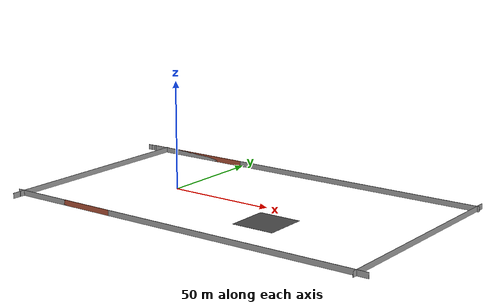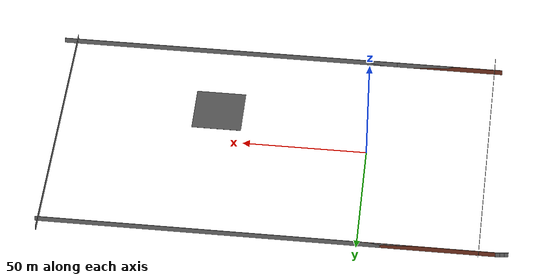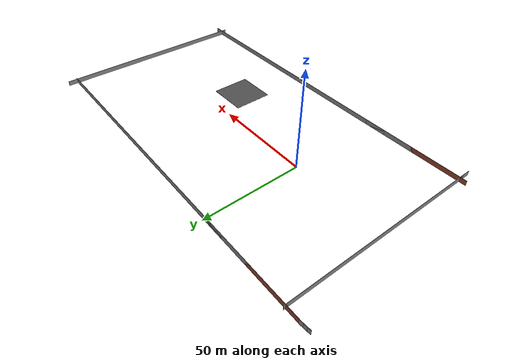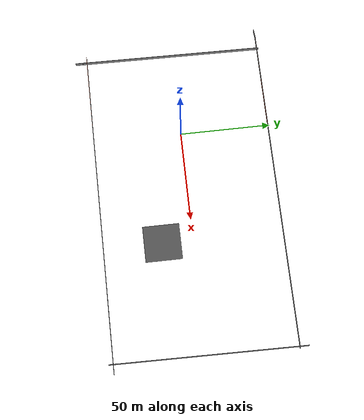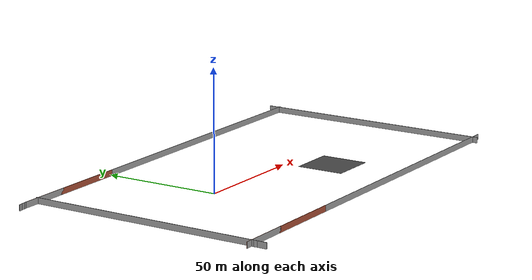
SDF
<sdf version="1.7">
 <world name="default">
  <scene>
   <grid>0</grid>
   <origin_visual>0</origin_visual>
   <ambient>0.85 0.85 0.85 1</ambient>
   <sky><clouds><speed>12</speed></clouds></sky>
   <background>0.35 0.35 0.35 1</background>
   <shadows>1</shadows>
  </scene>
  <physics name="default_physics" default="0" type="ode">
   <max_step_size>0.005</max_step_size>
   <real_time_factor>1</real_time_factor>
   <real_time_update_rate>200</real_time_update_rate>
  </physics>
  <light name="sun" type="directional">
   <pose>0 0 1000 0 -0 0</pose>
   <diffuse>0.8 0.8 0.8 1</diffuse>
   <specular>0.5 0.5 0.5 1</specular>
   <attenuation>
    <range>1000</range>
    <constant>0.9</constant>
    <linear>0.01</linear>
    <quadratic>0.001</quadratic>
   </attenuation>
   <direction>-0.5 0.1 -0.4</direction>
   <spot><inner_angle>0</inner_angle><outer_angle>0</outer_angle><falloff>0</falloff></spot>
  </light>
  <model name="ground_plane">
   <static>1</static>
   <link name="link">
    <collision name="collision">
     <geometry><plane><normal>0 0 1</normal><size>100 100</size></plane></geometry>
     <surface><friction><ode><mu>100</mu><mu2>50</mu2></ode></friction></surface>
    </collision>
   </link>
  </model>
  <model name="asphalt_plane_74">
   <static>1</static>
   <pose>61.581 -16.664 0 0 -0 0</pose>
   <link name="link">
    <visual name="visual">
     <geometry><box><size>20 20 0.05</size></box></geometry>
     <material>
      <script>
       <uri>model://asphalt_plane/materials/scripts</uri>
       <uri>model://asphalt_plane/materials/textures</uri>
       <name>vrc/asphalt</name>
      </script>
     </material>
    </visual>
   </link>
  </model>
  <gravity>0 0 -9.8</gravity>
  <magnetic_field>6e-06 2.3e-05 -4.2e-05</magnetic_field>
  <atmosphere type="adiabatic"/>
  <spherical_coordinates>
   <surface_model>EARTH_WGS84</surface_model>
   <latitude_deg>0</latitude_deg>
   <longitude_deg>0</longitude_deg>
   <elevation>0</elevation>
   <heading_deg>0</heading_deg>
  </spherical_coordinates>
  <model name="wall1">
   <link name="Wall_0">
    <pose>-47.43 -1.8725 0 0 -0 0</pose>
    <visual name="Wall_0_Visual">
     <pose>0 0 1.25 0 -0 0</pose>
     <geometry><box><size>0.16 0.15 2.5</size></box></geometry>
     <material>
      <script><uri>file://media/materials/scripts/gazebo.material</uri><name>Gazebo/Grey</name></script>
      <ambient>1 1 1 1</ambient>
      <shader type="pixel"/>
     </material>
     <meta><layer>0</layer></meta>
    </visual>
    <collision name="Wall_0_Collision">
     <pose>0 0 1.25 0 -0 0</pose>
     <geometry><box><size>0.16 0.15 2.5</size></box></geometry>
     <surface>
      <friction>
       <ode><mu>1</mu><mu2>1</mu2><fdir1>0 0 0</fdir1><slip1>0</slip1><slip2>0</slip2></ode>
       <torsional>
        <coefficient>1</coefficient>
        <patch_radius>0</patch_radius>
        <surface_radius>0</surface_radius>
        <use_patch_radius>1</use_patch_radius>
        <ode><slip>0</slip></ode>
       </torsional>
      </friction>
      <bounce><restitution_coefficient>0</restitution_coefficient><threshold>1e+06</threshold></bounce>
      <contact>
       <collide_without_contact>0</collide_without_contact>
       <collide_without_contact_bitmask>1</collide_without_contact_bitmask>
       <collide_bitmask>1</collide_bitmask>
       <ode>
        <soft_cfm>0</soft_cfm>
        <soft_erp>0.2</soft_erp>
        <kp>1e+13</kp>
        <kd>1</kd>
        <max_vel>0.01</max_vel>
        <min_depth>0</min_depth>
       </ode>
       <bullet>
        <split_impulse>1</split_impulse>
        <split_impulse_penetration_threshold>-0.01</split_impulse_penetration_threshold>
        <soft_cfm>0</soft_cfm>
        <soft_erp>0.2</soft_erp>
        <kp>1e+13</kp>
        <kd>1</kd>
       </bullet>
      </contact>
     </surface>
    </collision>
   </link>
   <link name="Wall_1">
    <pose>-42 -1.8725 0 0 -0 0</pose>
    <visual name="Wall_1_Visual">
     <pose>0 0 1.25 0 -0 0</pose>
     <geometry><box><size>11 0.15 2.5</size></box></geometry>
     <material>
      <script><uri>file://media/materials/scripts/gazebo.material</uri><name>Gazebo/Grey</name></script>
      <ambient>1 1 1 1</ambient>
      <shader type="pixel"/>
     </material>
     <meta><layer>0</layer></meta>
    </visual>
    <collision name="Wall_1_Collision">
     <pose>0 0 1.25 0 -0 0</pose>
     <geometry><box><size>11 0.15 2.5</size></box></geometry>
     <surface>
      <friction>
       <ode><mu>1</mu><mu2>1</mu2><fdir1>0 0 0</fdir1><slip1>0</slip1><slip2>0</slip2></ode>
       <torsional>
        <coefficient>1</coefficient>
        <patch_radius>0</patch_radius>
        <surface_radius>0</surface_radius>
        <use_patch_radius>1</use_patch_radius>
        <ode><slip>0</slip></ode>
       </torsional>
      </friction>
      <bounce><restitution_coefficient>0</restitution_coefficient><threshold>1e+06</threshold></bounce>
      <contact>
       <collide_without_contact>0</collide_without_contact>
       <collide_without_contact_bitmask>1</collide_without_contact_bitmask>
       <collide_bitmask>1</collide_bitmask>
       <ode>
        <soft_cfm>0</soft_cfm>
        <soft_erp>0.2</soft_erp>
        <kp>1e+13</kp>
        <kd>1</kd>
        <max_vel>0.01</max_vel>
        <min_depth>0</min_depth>
       </ode>
       <bullet>
        <split_impulse>1</split_impulse>
        <split_impulse_penetration_threshold>-0.01</split_impulse_penetration_threshold>
        <soft_cfm>0</soft_cfm>
        <soft_erp>0.2</soft_erp>
        <kp>1e+13</kp>
        <kd>1</kd>
       </bullet>
      </contact>
     </surface>
    </collision>
   </link>
   <link name="Wall_2">
    <pose>-63.625 -1.8725 0 0 -0 3.14159</pose>
    <visual name="Wall_2_Visual">
     <pose>0 0 1.25 0 -0 0</pose>
     <geometry><box><size>54.25 0.15 2.5</size></box></geometry>
     <material>
      <script><uri>file://media/materials/scripts/gazebo.material</uri><name>Gazebo/Bricks</name></script>
      <ambient>1 1 1 1</ambient>
      <shader type="pixel"/>
     </material>
     <meta><layer>0</layer></meta>
    </visual>
    <collision name="Wall_2_Collision">
     <pose>0 0 1.25 0 -0 0</pose>
     <geometry><box><size>54.25 0.15 2.5</size></box></geometry>
     <surface>
      <friction>
       <ode><mu>1</mu><mu2>1</mu2><fdir1>0 0 0</fdir1><slip1>0</slip1><slip2>0</slip2></ode>
       <torsional>
        <coefficient>1</coefficient>
        <patch_radius>0</patch_radius>
        <surface_radius>0</surface_radius>
        <use_patch_radius>1</use_patch_radius>
        <ode><slip>0</slip></ode>
       </torsional>
      </friction>
      <bounce><restitution_coefficient>0</restitution_coefficient><threshold>1e+06</threshold></bounce>
      <contact>
       <collide_without_contact>0</collide_without_contact>
       <collide_without_contact_bitmask>1</collide_without_contact_bitmask>
       <collide_bitmask>1</collide_bitmask>
       <ode>
        <soft_cfm>0</soft_cfm>
        <soft_erp>0.2</soft_erp>
        <kp>1e+13</kp>
        <kd>1</kd>
        <max_vel>0.01</max_vel>
        <min_depth>0</min_depth>
       </ode>
       <bullet>
        <split_impulse>1</split_impulse>
        <split_impulse_penetration_threshold>-0.01</split_impulse_penetration_threshold>
        <soft_cfm>0</soft_cfm>
        <soft_erp>0.2</soft_erp>
        <kp>1e+13</kp>
        <kd>1</kd>
       </bullet>
      </contact>
     </surface>
    </collision>
   </link>
   <link name="Wall_3">
    <pose>4e-06 -1.8725 0 0 -0 0</pose>
    <visual name="Wall_3_Visual">
     <pose>0 0 1.25 0 -0 0</pose>
     <geometry><box><size>181.5 0.15 2.5</size></box></geometry>
     <material>
      <script><uri>file://media/materials/scripts/gazebo.material</uri><name>Gazebo/Grey</name></script>
      <ambient>1 1 1 1</ambient>
      <shader type="pixel"/>
     </material>
     <meta><layer>0</layer></meta>
    </visual>
    <collision name="Wall_3_Collision">
     <pose>0 0 1.25 0 -0 0</pose>
     <geometry><box><size>181.5 0.15 2.5</size></box></geometry>
     <surface>
      <friction>
       <ode><mu>1</mu><mu2>1</mu2><fdir1>0 0 0</fdir1><slip1>0</slip1><slip2>0</slip2></ode>
       <torsional>
        <coefficient>1</coefficient>
        <patch_radius>0</patch_radius>
        <surface_radius>0</surface_radius>
        <use_patch_radius>1</use_patch_radius>
        <ode><slip>0</slip></ode>
       </torsional>
      </friction>
      <bounce><restitution_coefficient>0</restitution_coefficient><threshold>1e+06</threshold></bounce>
      <contact>
       <collide_without_contact>0</collide_without_contact>
       <collide_without_contact_bitmask>1</collide_without_contact_bitmask>
       <collide_bitmask>1</collide_bitmask>
       <ode>
        <soft_cfm>0</soft_cfm>
        <soft_erp>0.2</soft_erp>
        <kp>1e+13</kp>
        <kd>1</kd>
        <max_vel>0.01</max_vel>
        <min_depth>0</min_depth>
       </ode>
       <bullet>
        <split_impulse>1</split_impulse>
        <split_impulse_penetration_threshold>-0.01</split_impulse_penetration_threshold>
        <soft_cfm>0</soft_cfm>
        <soft_erp>0.2</soft_erp>
        <kp>1e+13</kp>
        <kd>1</kd>
       </bullet>
      </contact>
     </surface>
    </collision>
   </link>
   <static>1</static>
   <pose>38.8737 -46.8258 0 0 -0 0</pose>
  </model>
  <model name="wall1_clone">
   <link name="Wall_0">
    <pose>-47.43 -1.8725 0 0 -0 0</pose>
    <visual name="Wall_0_Visual">
     <pose>0 0 1.25 0 -0 0</pose>
     <geometry><box><size>0.16 0.15 2.5</size></box></geometry>
     <material>
      <script><uri>file://media/materials/scripts/gazebo.material</uri><name>Gazebo/Grey</name></script>
      <ambient>1 1 1 1</ambient>
      <shader type="pixel"/>
     </material>
     <meta><layer>0</layer></meta>
    </visual>
    <collision name="Wall_0_Collision">
     <pose>0 0 1.25 0 -0 0</pose>
     <geometry><box><size>0.16 0.15 2.5</size></box></geometry>
     <surface>
      <friction>
       <ode><mu>1</mu><mu2>1</mu2><fdir1>0 0 0</fdir1><slip1>0</slip1><slip2>0</slip2></ode>
       <torsional>
        <coefficient>1</coefficient>
        <patch_radius>0</patch_radius>
        <surface_radius>0</surface_radius>
        <use_patch_radius>1</use_patch_radius>
        <ode><slip>0</slip></ode>
       </torsional>
      </friction>
      <bounce><restitution_coefficient>0</restitution_coefficient><threshold>1e+06</threshold></bounce>
      <contact>
       <collide_without_contact>0</collide_without_contact>
       <collide_without_contact_bitmask>1</collide_without_contact_bitmask>
       <collide_bitmask>1</collide_bitmask>
       <ode>
        <soft_cfm>0</soft_cfm>
        <soft_erp>0.2</soft_erp>
        <kp>1e+13</kp>
        <kd>1</kd>
        <max_vel>0.01</max_vel>
        <min_depth>0</min_depth>
       </ode>
       <bullet>
        <split_impulse>1</split_impulse>
        <split_impulse_penetration_threshold>-0.01</split_impulse_penetration_threshold>
        <soft_cfm>0</soft_cfm>
        <soft_erp>0.2</soft_erp>
        <kp>1e+13</kp>
        <kd>1</kd>
       </bullet>
      </contact>
     </surface>
    </collision>
   </link>
   <link name="Wall_1">
    <pose>-42 -1.8725 0 0 -0 0</pose>
    <visual name="Wall_1_Visual">
     <pose>0 0 1.25 0 -0 0</pose>
     <geometry><box><size>11 0.15 2.5</size></box></geometry>
     <material>
      <script><uri>file://media/materials/scripts/gazebo.material</uri><name>Gazebo/Grey</name></script>
      <ambient>1 1 1 1</ambient>
      <shader type="pixel"/>
     </material>
     <meta><layer>0</layer></meta>
    </visual>
    <collision name="Wall_1_Collision">
     <pose>0 0 1.25 0 -0 0</pose>
     <geometry><box><size>11 0.15 2.5</size></box></geometry>
     <surface>
      <friction>
       <ode><mu>1</mu><mu2>1</mu2><fdir1>0 0 0</fdir1><slip1>0</slip1><slip2>0</slip2></ode>
       <torsional>
        <coefficient>1</coefficient>
        <patch_radius>0</patch_radius>
        <surface_radius>0</surface_radius>
        <use_patch_radius>1</use_patch_radius>
        <ode><slip>0</slip></ode>
       </torsional>
      </friction>
      <bounce><restitution_coefficient>0</restitution_coefficient><threshold>1e+06</threshold></bounce>
      <contact>
       <collide_without_contact>0</collide_without_contact>
       <collide_without_contact_bitmask>1</collide_without_contact_bitmask>
       <collide_bitmask>1</collide_bitmask>
       <ode>
        <soft_cfm>0</soft_cfm>
        <soft_erp>0.2</soft_erp>
        <kp>1e+13</kp>
        <kd>1</kd>
        <max_vel>0.01</max_vel>
        <min_depth>0</min_depth>
       </ode>
       <bullet>
        <split_impulse>1</split_impulse>
        <split_impulse_penetration_threshold>-0.01</split_impulse_penetration_threshold>
        <soft_cfm>0</soft_cfm>
        <soft_erp>0.2</soft_erp>
        <kp>1e+13</kp>
        <kd>1</kd>
       </bullet>
      </contact>
     </surface>
    </collision>
   </link>
   <link name="Wall_2">
    <pose>-63.625 -1.8725 0 0 -0 3.14159</pose>
    <visual name="Wall_2_Visual">
     <pose>0 0 1.25 0 -0 0</pose>
     <geometry><box><size>54.25 0.15 2.5</size></box></geometry>
     <material>
      <script><uri>file://media/materials/scripts/gazebo.material</uri><name>Gazebo/Bricks</name></script>
      <ambient>1 1 1 1</ambient>
      <shader type="pixel"/>
     </material>
     <meta><layer>0</layer></meta>
    </visual>
    <collision name="Wall_2_Collision">
     <pose>0 0 1.25 0 -0 0</pose>
     <geometry><box><size>54.25 0.15 2.5</size></box></geometry>
     <surface>
      <friction>
       <ode><mu>1</mu><mu2>1</mu2><fdir1>0 0 0</fdir1><slip1>0</slip1><slip2>0</slip2></ode>
       <torsional>
        <coefficient>1</coefficient>
        <patch_radius>0</patch_radius>
        <surface_radius>0</surface_radius>
        <use_patch_radius>1</use_patch_radius>
        <ode><slip>0</slip></ode>
       </torsional>
      </friction>
      <bounce><restitution_coefficient>0</restitution_coefficient><threshold>1e+06</threshold></bounce>
      <contact>
       <collide_without_contact>0</collide_without_contact>
       <collide_without_contact_bitmask>1</collide_without_contact_bitmask>
       <collide_bitmask>1</collide_bitmask>
       <ode>
        <soft_cfm>0</soft_cfm>
        <soft_erp>0.2</soft_erp>
        <kp>1e+13</kp>
        <kd>1</kd>
        <max_vel>0.01</max_vel>
        <min_depth>0</min_depth>
       </ode>
       <bullet>
        <split_impulse>1</split_impulse>
        <split_impulse_penetration_threshold>-0.01</split_impulse_penetration_threshold>
        <soft_cfm>0</soft_cfm>
        <soft_erp>0.2</soft_erp>
        <kp>1e+13</kp>
        <kd>1</kd>
       </bullet>
      </contact>
     </surface>
    </collision>
   </link>
   <link name="Wall_3">
    <pose>4e-06 -1.8725 0 0 -0 0</pose>
    <visual name="Wall_3_Visual">
     <pose>0 0 1.25 0 -0 0</pose>
     <geometry><box><size>181.5 0.15 2.5</size></box></geometry>
     <material>
      <script><uri>file://media/materials/scripts/gazebo.material</uri><name>Gazebo/Grey</name></script>
      <ambient>1 1 1 1</ambient>
      <shader type="pixel"/>
     </material>
     <meta><layer>0</layer></meta>
    </visual>
    <collision name="Wall_3_Collision">
     <pose>0 0 1.25 0 -0 0</pose>
     <geometry><box><size>181.5 0.15 2.5</size></box></geometry>
     <surface>
      <friction>
       <ode><mu>1</mu><mu2>1</mu2><fdir1>0 0 0</fdir1><slip1>0</slip1><slip2>0</slip2></ode>
       <torsional>
        <coefficient>1</coefficient>
        <patch_radius>0</patch_radius>
        <surface_radius>0</surface_radius>
        <use_patch_radius>1</use_patch_radius>
        <ode><slip>0</slip></ode>
       </torsional>
      </friction>
      <bounce><restitution_coefficient>0</restitution_coefficient><threshold>1e+06</threshold></bounce>
      <contact>
       <collide_without_contact>0</collide_without_contact>
       <collide_without_contact_bitmask>1</collide_without_contact_bitmask>
       <collide_bitmask>1</collide_bitmask>
       <ode>
        <soft_cfm>0</soft_cfm>
        <soft_erp>0.2</soft_erp>
        <kp>1e+13</kp>
        <kd>1</kd>
        <max_vel>0.01</max_vel>
        <min_depth>0</min_depth>
       </ode>
       <bullet>
        <split_impulse>1</split_impulse>
        <split_impulse_penetration_threshold>-0.01</split_impulse_penetration_threshold>
        <soft_cfm>0</soft_cfm>
        <soft_erp>0.2</soft_erp>
        <kp>1e+13</kp>
        <kd>1</kd>
       </bullet>
      </contact>
     </surface>
    </collision>
   </link>
   <static>1</static>
   <pose>35.9387 50.9103 0 0 -0 0</pose>
  </model>
  <model name="wall22">
   <pose>154.445 1.13518 0 0 0 -1.58266</pose>
   <link name="Wall_8">
    <collision name="Wall_8_Collision">
     <geometry><box><size>105 0.15 2.5</size></box></geometry>
     <pose>0 0 1.25 0 -0 0</pose>
    </collision>
    <visual name="Wall_8_Visual">
     <pose>0 0 1.25 0 -0 0</pose>
     <geometry><box><size>105 0.15 2.5</size></box></geometry>
     <material>
      <script><uri>file://media/materials/scripts/gazebo.material</uri><name>Gazebo/Grey</name></script>
      <ambient>1 1 1 1</ambient>
     </material>
     <meta><layer>0</layer></meta>
    </visual>
    <pose>0 -29.4763 0 0 -0 0</pose>
   </link>
   <static>1</static>
  </model>
  <model name="Untitled31">
   <pose>-46.3234 -51.0158 0 0 0 -1.52729</pose>
   <link name="Wall_14">
    <collision name="Wall_14_Collision">
     <geometry><box><size>1.75 0.15 2.5</size></box></geometry>
     <pose>0 0 1.25 0 -0 0</pose>
    </collision>
    <visual name="Wall_14_Visual">
     <pose>0 0 1.25 0 -0 0</pose>
     <geometry><box><size>1.75 0.15 2.5</size></box></geometry>
     <material>
      <script><uri>file://media/materials/scripts/gazebo.material</uri><name>Gazebo/Grey</name></script>
      <ambient>1 1 1 1</ambient>
     </material>
     <meta><layer>0</layer></meta>
    </visual>
    <pose>-0.70247 -2.40203 0 0 -0 0</pose>
   </link>
   <static>1</static>
  </model>
  <model name="Untitled31_clone">
   <pose>-55.4444 46.5769 0 0 0 -3.05482</pose>
   <link name="Wall_14">
    <collision name="Wall_14_Collision">
     <geometry><box><size>1.75 0.15 2.5</size></box></geometry>
     <pose>0 0 1.25 0 -0 0</pose>
    </collision>
    <visual name="Wall_14_Visual">
     <pose>0 0 1.25 0 -0 0</pose>
     <geometry><box><size>1.75 0.15 2.5</size></box></geometry>
     <material>
      <script><uri>file://media/materials/scripts/gazebo.material</uri><name>Gazebo/Grey</name></script>
      <ambient>1 1 1 1</ambient>
     </material>
     <meta><layer>0</layer></meta>
    </visual>
    <pose>-0.70247 -2.40203 0 0 -0 0</pose>
   </link>
   <static>1</static>
  </model>
  <model name="Untitled31_clone_clone">
   <pose>-57.1796 46.4373 0 0 0 -3.05482</pose>
   <link name="Wall_14">
    <collision name="Wall_14_Collision">
     <geometry><box><size>1.75 0.15 2.5</size></box></geometry>
     <pose>0 0 1.25 0 -0 0</pose>
    </collision>
    <visual name="Wall_14_Visual">
     <pose>0 0 1.25 0 -0 0</pose>
     <geometry><box><size>1.75 0.15 2.5</size></box></geometry>
     <material>
      <script><uri>file://media/materials/scripts/gazebo.material</uri><name>Gazebo/Grey</name></script>
      <ambient>1 1 1 1</ambient>
     </material>
     <meta><layer>0</layer></meta>
    </visual>
    <pose>-0.70247 -2.40203 0 0 -0 0</pose>
   </link>
   <static>1</static>
  </model>
  <model name="Untitled31_clone_clone_0">
   <pose>-58.7342 46.2785 0 0 0 -3.05482</pose>
   <link name="Wall_14">
    <collision name="Wall_14_Collision">
     <geometry><box><size>1.75 0.15 2.5</size></box></geometry>
     <pose>0 0 1.25 0 -0 0</pose>
    </collision>
    <visual name="Wall_14_Visual">
     <pose>0 0 1.25 0 -0 0</pose>
     <geometry><box><size>1.75 0.15 2.5</size></box></geometry>
     <material>
      <script><uri>file://media/materials/scripts/gazebo.material</uri><name>Gazebo/Grey</name></script>
      <ambient>1 1 1 1</ambient>
     </material>
     <meta><layer>0</layer></meta>
    </visual>
    <pose>-0.70247 -2.40203 0 0 -0 0</pose>
   </link>
   <static>1</static>
  </model>
  <model name="wall22_clone">
   <pose>-18.684 -2.94033 0 0 0 -1.58266</pose>
   <link name="Wall_8">
    <collision name="Wall_8_Collision">
     <geometry><box><size>105 0.15 2.5</size></box></geometry>
     <pose>0 0 1.25 0 -0 0</pose>
    </collision>
    <visual name="Wall_8_Visual">
     <pose>0 0 1.25 0 -0 0</pose>
     <geometry><box><size>105 0.15 2.5</size></box></geometry>
     <material>
      <script><uri>file://media/materials/scripts/gazebo.material</uri><name>Gazebo/Grey</name></script>
      <ambient>1 1 1 1</ambient>
     </material>
     <meta><layer>0</layer></meta>
    </visual>
    <pose>0 -29.4763 0 0 -0 0</pose>
   </link>
   <static>1</static>
  </model>
 </world>
</sdf>
